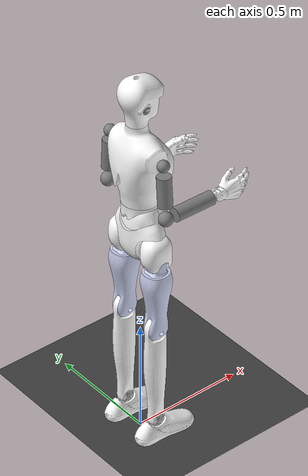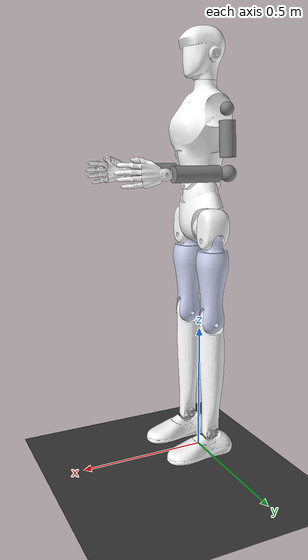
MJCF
<mujoco model="X03B">
  <compiler angle="radian" meshdir="./meshes/"/>
  <statistic meansize="0.177939" extent="1.9618" center="0.0465088 1.93584e-06 -0.21519"/>
  <asset>
    <texture type="skybox" builtin="gradient" width="128" height="128" rgb1="0.4 0.6 0.8" rgb2="0 0 0"/>
    <texture name="plane" type="2d" builtin="checker" rgb1="0.2 0.2 0.2" rgb2="0.3 0.3 0.3" width="512"
              height="512"/>
    <material name="plane" reflectance="0.0" texture="plane" texrepeat="1 1" texuniform="true"/>
    <mesh name="pelvis" file="pelvis.STL"/>
    <mesh name="left_hip_pitch_link" file="left_hip_pitch_link.STL"/>
    <mesh name="left_hip_roll_link" file="left_hip_roll_link.STL"/>
    <mesh name="left_hip_yaw_link" file="left_hip_yaw_link.STL"/>
    <mesh name="left_knee_link" file="left_knee_link.STL"/>
    <mesh name="left_ankle_pitch_link" file="left_ankle_pitch_link.STL"/>
    <mesh name="left_ankle_roll_link" file="left_ankle_roll_link.STL"/>
    <mesh name="right_hip_pitch_link" file="right_hip_pitch_link.STL"/>
    <mesh name="right_hip_roll_link" file="right_hip_roll_link.STL"/>
    <mesh name="right_hip_yaw_link" file="right_hip_yaw_link.STL"/>
    <mesh name="right_knee_link" file="right_knee_link.STL"/>
    <mesh name="right_ankle_pitch_link" file="right_ankle_pitch_link.STL"/>
    <mesh name="right_ankle_roll_link" file="right_ankle_roll_link.STL"/>
    <mesh name="waist_roll_link" file="waist_roll_link.STL"/>
    <mesh name="waist_yaw_link" file="waist_yaw_link.STL"/>
    <mesh name="torso_link" file="torso_link.STL"/>
    <mesh name="head_pitch_link" file="head_pitch_link.STL"/>
    <mesh name="head_yaw_link" file="head_yaw_link.STL"/>
    <mesh name="left_wrist_yaw_link" file="left_wrist_yaw_link.STL"/>
    <mesh name="left_wrist_pitch_link" file="left_wrist_pitch_link.STL"/>
    <mesh name="right_wrist_yaw_link" file="right_wrist_yaw_link.STL"/>
    <mesh name="right_wrist_pitch_link" file="right_wrist_pitch_link.STL"/>
  </asset>

  <worldbody>
    <geom name="floor" pos="0.001 0 0" size="100 10 .125" type="plane" material="plane" condim="3"
          conaffinity="15" friction="0.6 0.6 0.001"/>
    <light mode="trackcom" pos="0 0 5" dir="0 0 -1"/>
    <body name="pelvis" pos="0 0 0.92">
      <inertial pos="0.0019573 -1.0752e-05 0.056344" quat="1 -5.84214e-06 -0.00052877 -3.08915e-09" mass="2" diaginertia="0.018968 0.01665 0.015454"/>
      <joint name="pelvis" type="free" limited="false" actuatorfrclimited="false"/>
      <geom type="mesh" contype="0" conaffinity="0" group="1" density="0" rgba="1 1 1 1" mesh="pelvis"/>
      <geom size="0.06" pos="0 0 0.08" rgba="1 1 1 1"/>
      <body name="left_hip_pitch_link" pos="0 0.0975 0">
        <inertial pos="-0.0008943 -0.001219 0.0084596" quat="0.705285 -0.0460479 -0.034964 0.706563" mass="2" diaginertia="0.00221415 0.00182021 0.00160574"/>
        <joint name="left_hip_pitch_joint" pos="0 0 0" axis="0 1 0" range="-1.5708 0.7854"/>
        <geom type="mesh" contype="0" conaffinity="0" group="1" density="0" rgba="1 1 1 1" mesh="left_hip_pitch_link"/>
        <geom type="mesh" rgba="1 1 1 1" mesh="left_hip_pitch_link"/>
        <site name="imu" pos="0 0 0"/>
        <body name="left_hip_roll_link" pos="0 0 -0.044">
          <inertial pos="2.5752e-05 -4.528e-07 -0.0093831" quat="0.999999 -0.000152715 -0.00153048 -4.79447e-05" mass="0.3" diaginertia="0.00020398 0.00016045 0.00015153"/>
          <joint name="left_hip_roll_joint" pos="0 0 0" axis="1 0 0" range="-0.1745 1.5708"/>
          <geom type="mesh" contype="0" conaffinity="0" group="1" density="0" rgba="0.79216 0.81961 0.93333 1" mesh="left_hip_roll_link"/>
          <geom type="mesh" rgba="0.79216 0.81961 0.93333 1" mesh="left_hip_roll_link"/>
          <body name="left_hip_yaw_link" pos="0 0 -0.042">
            <inertial pos="0.00201125 0 -0.116126" quat="0.999996 -2.71485e-07 0.0029121 -9.32259e-05" mass="1.4" diaginertia="0.0100453 0.00999163 0.00202512"/>
            <joint name="left_hip_yaw_joint" pos="0 0 0" axis="0 0 -1" range="-1.5708 1.5708"/>
            <geom type="mesh" contype="0" conaffinity="0" group="1" density="0" rgba="0.79216 0.81961 0.93333 1" mesh="left_hip_yaw_link"/>
            <geom type="mesh" rgba="0.79216 0.81961 0.93333 1" mesh="left_hip_yaw_link"/>
            <body name="left_knee_link" pos="0 0 -0.284">
              <inertial pos="-0.00201967 0 -0.216004" quat="0.707106 0.00121882 0.00121882 0.707106" mass="1" diaginertia="0.0192834 0.0190851 0.000833153"/>
              <joint name="left_knee_joint" pos="0 0 0" axis="0 1 0" range="0 2.3562"/>
              <geom type="mesh" contype="0" conaffinity="0" group="1" density="0" rgba="1 1 1 1" mesh="left_knee_link"/>
              <geom type="mesh" rgba="1 1 1 1" mesh="left_knee_link"/>
              <body name="left_ankle_pitch_link" pos="0 0 -0.45">
                <inertial pos="6.9616e-09 4.5483e-09 -0.0074946" quat="0.707107 0 0 0.707107" mass="0.4" diaginertia="9.1324e-05 7.9792e-05 3.5468e-05"/>
                <joint name="left_ankle_pitch_joint" pos="0 0 0" axis="0 1 0" range="-1.0472 1.0472"/>
                <geom type="mesh" contype="0" conaffinity="0" group="1" density="0" rgba="1 1 1 1" mesh="left_ankle_pitch_link"/>
                <geom type="mesh" rgba="1 1 1 1" mesh="left_ankle_pitch_link"/>
                <body name="left_ankle_roll_link" pos="0 0 -0.058">
                  <inertial pos="0.025367 -1.8243e-07 -0.010325" quat="-1.59255e-06 0.723573 3.96319e-07 0.690248" mass="0.6" diaginertia="0.00368693 0.0034177 0.000384599"/>
                  <joint name="left_ankle_roll_joint" pos="0 0 0" axis="1 0 0" range="-0.524 0.524"/>
                  <geom type="mesh" contype="0" conaffinity="0" group="1" density="0" rgba="1 1 1 1" mesh="left_ankle_roll_link"/>
                  <geom size="0.005" pos="-0.085 0 -0.036" rgba="1 1 1 1"/>
                  <geom size="0.005" pos="-0.035 0.034 -0.036" rgba="1 1 1 1"/>
                  <geom size="0.005" pos="-0.035 -0.034 -0.036" rgba="1 1 1 1"/>
                  <geom size="0.005" pos="0.12 0.045 -0.036" rgba="1 1 1 1"/>
                  <geom size="0.005" pos="0.12 -0.045 -0.036" rgba="1 1 1 1"/>
                  <geom size="0.005" pos="0.18 0 -0.036" rgba="1 1 1 1"/>
                  <geom size="0.01 0.05" pos="0.08 -0.026 -0.024" quat="0.707105 0 0.707108 0" type="cylinder" rgba="1 1 1 1"/>
                  <geom size="0.01 0.1" pos="0.044 -0.018 -0.024" quat="0.707105 0 -0.707108 0" type="cylinder" rgba="1 1 1 1"/>
                  <geom size="0.01 0.12" pos="0.046 -0.01 -0.024" quat="0.707105 0 -0.707108 0" type="cylinder" rgba="1 1 1 1"/>
                  <geom size="0.01 0.125" pos="0.048 0 -0.024" quat="0.707105 0 -0.707108 0" type="cylinder" rgba="1 1 1 1"/>
                  <geom size="0.01 0.12" pos="0.046 0.01 -0.024" quat="0.707105 0 -0.707108 0" type="cylinder" rgba="1 1 1 1"/>
                  <geom size="0.01 0.1" pos="0.044 0.018 -0.024" quat="0.707105 0 -0.707108 0" type="cylinder" rgba="1 1 1 1"/>
                  <geom size="0.01 0.05" pos="0.08 0.026 -0.024" quat="0.707105 0 0.707108 0" type="cylinder" rgba="1 1 1 1"/>
                </body>
              </body>
            </body>
          </body>
        </body>
      </body>
      <body name="right_hip_pitch_link" pos="0 -0.0975 0">
        <inertial pos="-0.0008943 -0.001219 0.0084596" quat="0.705285 -0.0460479 -0.034964 0.706563" mass="2" diaginertia="0.00221415 0.00182021 0.00160574"/>
        <joint name="right_hip_pitch_joint" pos="0 0 0" axis="0 1 0" range="-1.5708 0.7854"/>
        <geom type="mesh" contype="0" conaffinity="0" group="1" density="0" rgba="1 1 1 1" mesh="right_hip_pitch_link"/>
        <geom type="mesh" rgba="1 1 1 1" mesh="right_hip_pitch_link"/>
        <body name="right_hip_roll_link" pos="0 0 -0.044">
          <inertial pos="2.5751e-05 -4.4797e-07 -0.0093831" quat="0.999999 -0.000150617 -0.00153038 -4.8093e-05" mass="0.3" diaginertia="0.00020398 0.00016045 0.00015153"/>
          <joint name="right_hip_roll_joint" pos="0 0 0" axis="1 0 0" range="-1.5708 0.1745"/>
          <geom type="mesh" contype="0" conaffinity="0" group="1" density="0" rgba="0.79216 0.81961 0.93333 1" mesh="right_hip_roll_link"/>
          <geom type="mesh" rgba="0.79216 0.81961 0.93333 1" mesh="right_hip_roll_link"/>
          <body name="right_hip_yaw_link" pos="0 0 -0.042">
            <inertial pos="0.00201125 0 -0.116126" quat="0.999996 -2.71485e-07 0.0029121 -9.32259e-05" mass="1.4" diaginertia="0.0100453 0.00999163 0.00202512"/>
            <joint name="right_hip_yaw_joint" pos="0 0 0" axis="0 0 1" range="-1.5708 1.5708"/>
            <geom type="mesh" contype="0" conaffinity="0" group="1" density="0" rgba="0.79216 0.81961 0.93333 1" mesh="right_hip_yaw_link"/>
            <geom type="mesh" rgba="0.79216 0.81961 0.93333 1" mesh="right_hip_yaw_link"/>
            <body name="right_knee_link" pos="0 0 -0.284">
              <inertial pos="-0.00201967 0 -0.216004" quat="0.707106 0.00121882 0.00121882 0.707106" mass="1" diaginertia="0.0192834 0.0190851 0.000833153"/>
              <joint name="right_knee_joint" pos="0 0 0" axis="0 1 0" range="0 2.3562"/>
              <geom type="mesh" contype="0" conaffinity="0" group="1" density="0" rgba="1 1 1 1" mesh="right_knee_link"/>
              <geom type="mesh" rgba="1 1 1 1" mesh="right_knee_link"/>
              <body name="right_ankle_pitch_link" pos="0 0 -0.45">
                <inertial pos="6.9616e-09 4.5483e-09 -0.0074946" quat="0.707107 0 0 0.707107" mass="0.4" diaginertia="9.1324e-05 7.9792e-05 3.5468e-05"/>
                <joint name="right_ankle_pitch_joint" pos="0 0 0" axis="0 1 0" range="-1.0472 1.0472"/>
                <geom type="mesh" contype="0" conaffinity="0" group="1" density="0" rgba="1 1 1 1" mesh="right_ankle_pitch_link"/>
                <geom type="mesh" rgba="1 1 1 1" mesh="right_ankle_pitch_link"/>
                <body name="right_ankle_roll_link" pos="0 0 -0.058">
                  <inertial pos="0.025367 -1.8287e-07 -0.010325" quat="-1.59008e-06 0.723573 3.90943e-07 0.690248" mass="0.6" diaginertia="0.00368693 0.0034177 0.000384599"/>
                  <joint name="right_ankle_roll_joint" pos="0 0 0" axis="1 0 0" range="-0.524 0.524"/>
                  <geom type="mesh" contype="0" conaffinity="0" group="1" density="0" rgba="1 1 1 1" mesh="right_ankle_roll_link"/>
                  <geom size="0.005" pos="-0.085 0 -0.036" rgba="1 1 1 1"/>
                  <geom size="0.005" pos="-0.035 0.034 -0.036" rgba="1 1 1 1"/>
                  <geom size="0.005" pos="-0.035 -0.034 -0.036" rgba="1 1 1 1"/>
                  <geom size="0.005" pos="0.12 0.045 -0.036" rgba="1 1 1 1"/>
                  <geom size="0.005" pos="0.12 -0.045 -0.036" rgba="1 1 1 1"/>
                  <geom size="0.005" pos="0.18 0 -0.036" rgba="1 1 1 1"/>
                  <geom size="0.01 0.05" pos="0.08 -0.026 -0.024" quat="0.707105 0 0.707108 0" type="cylinder" rgba="1 1 1 1"/>
                  <geom size="0.01 0.1" pos="0.044 -0.018 -0.024" quat="0.707105 0 -0.707108 0" type="cylinder" rgba="1 1 1 1"/>
                  <geom size="0.01 0.12" pos="0.046 -0.01 -0.024" quat="0.707105 0 -0.707108 0" type="cylinder" rgba="1 1 1 1"/>
                  <geom size="0.01 0.125" pos="0.048 0 -0.024" quat="0.707105 0 -0.707108 0" type="cylinder" rgba="1 1 1 1"/>
                  <geom size="0.01 0.12" pos="0.046 0.01 -0.024" quat="0.707105 0 -0.707108 0" type="cylinder" rgba="1 1 1 1"/>
                  <geom size="0.01 0.1" pos="0.044 0.018 -0.024" quat="0.707105 0 -0.707108 0" type="cylinder" rgba="1 1 1 1"/>
                  <geom size="0.01 0.05" pos="0.08 0.026 -0.024" quat="0.707105 0 0.707108 0" type="cylinder" rgba="1 1 1 1"/>
                </body>
              </body>
            </body>
          </body>
        </body>
      </body>
      <body name="waist_roll_link" pos="0 0 0.1525">
        <inertial pos="0.0020869 -9.8997e-08 0.027535" quat="-3.95653e-06 0.706536 3.96293e-06 0.707678" mass="1.5" diaginertia="0.0017744 0.0011951 0.000837528"/>
        <joint name="waist_roll_joint" pos="0 0 0" axis="-1 0 0" range="-0.3491 0.3491"/>
        <geom type="mesh" contype="0" conaffinity="0" group="1" density="0" rgba="1 1 1 1" mesh="waist_roll_link"/>
        <geom type="mesh" rgba="1 1 1 1" mesh="waist_roll_link"/>
        <body name="waist_yaw_link">
          <inertial pos="0.00198772 0.000200573 0.228119" quat="0.999969 -0.00114848 -0.00763851 -0.00148785" mass="13.5" diaginertia="0.341179 0.339681 0.0204143"/>
          <joint name="waist_yaw_joint" pos="0 0 0" axis="0 0 1" range="-1.5708 1.5708"/>
          <geom type="mesh" contype="0" conaffinity="0" group="1" density="0" rgba="1 1 1 1" mesh="waist_yaw_link"/>
          <geom type="mesh" rgba="1 1 1 1" mesh="waist_yaw_link"/>
          <geom type="mesh" contype="0" conaffinity="0" group="1" density="0" rgba="1 1 1 1" mesh="torso_link"/>
          <geom type="mesh" rgba="1 1 1 1" mesh="torso_link"/>
          <geom pos="-0.015 1.03068e-05 0.3815" quat="1 0 0 0" type="mesh" contype="0" conaffinity="0" group="1" density="0" rgba="1 1 1 1" mesh="head_pitch_link"/>
          <geom pos="-0.015 1.03068e-05 0.3815" quat="1 0 0 0" type="mesh" rgba="1 1 1 1" mesh="head_pitch_link"/>
          <geom pos="-0.015 1.03068e-05 0.3815" quat="1 0 0 0" type="mesh" contype="0" conaffinity="0" group="1" density="0" rgba="1 1 1 1" mesh="head_yaw_link"/>
          <geom pos="-0.015 1.03068e-05 0.3815" quat="1 0 0 0" type="mesh" rgba="1 1 1 1" mesh="head_yaw_link"/>
          <body name="left_shoulder_pitch_link" pos="-0.015 0.0835112 0.2865">
            <inertial pos="-2.1187e-08 0.055283 -3.2729e-10" quat="0.707105 -1.36523e-05 1.03215e-05 0.707108" mass="0.8" diaginertia="0.00060184 0.00059731 0.00056165"/>
            <joint name="left_shoulder_pitch_joint" pos="0 0 0" axis="0 1 0" range="-3.1416 1.5708"/>
            <body name="left_shoulder_roll_link" pos="0 0.0739953 0">
              <inertial pos="-0.0011333 0.00054145 -0.0024787" quat="0.936295 0.351214 0.000448155 -0.000246601" mass="0.2" diaginertia="0.000111 7.33716e-05 6.96504e-05"/>
              <joint name="left_shoulder_roll_joint" pos="0 0 0" axis="1 0 0" range="-0.1222 2.0944"/>
              <geom size="0.025"/>
              <body name="left_shoulder_yaw_link" pos="0 0.00256631 -0.0369112" quat="0.9994 0.0346494 0 0">
                <inertial pos="-0.0010112 3.4167e-05 -0.096956" quat="0.999997 -0.00194267 0.00141822 5.84669e-05" mass="1.7" diaginertia="0.00260612 0.00252503 0.000542013"/>
                <joint name="left_shoulder_yaw_joint" pos="0 0 0" axis="0 0 1" range="-0.7854 0.7854"/>
                <geom size="0.03 0.065" pos="0 0 -0.07" quat="-3.67321e-06 1 0 0" type="cylinder"/>
                <body name="left_elbow_link" pos="0 0 -0.193">
                  <inertial pos="0.00058454 3.3764e-10 0.0012698" quat="0.707026 0.0106613 0.0106626 0.707026" mass="0.6" diaginertia="8.3729e-05 5.54874e-05 5.39876e-05"/>
                  <joint name="left_elbow_joint" pos="0 0 0" axis="0 1 0" range="-0.5236 1.5708"/>
                  <geom size="0.03"/>
                  <body name="left_wrist_roll_link" pos="0.032 0 0">
                      <inertial pos="0.165655 0.000605316 0.00172587" quat="0.445809 0.547137 0.437592 0.557144" mass="1.8" diaginertia="0.0172026 0.0170529 0.000458169"/>
                      <joint name="left_wrist_roll_joint" pos="0 0 0" axis="1 0 0" range="-0.7854 0.7854"/>
                      <geom size="0.03 0.09" pos="0.1 0 0" quat="0.707388 0 0.706825 0" type="cylinder"/>
                      <geom pos="0.203 0 0" quat="1 0 0 0" type="mesh" contype="0" conaffinity="0" group="1" density="0" rgba="1 1 1 1" mesh="left_wrist_yaw_link"/>
                      <geom pos="0.203 0 0" quat="1 0 0 0" type="mesh" rgba="1 1 1 1" mesh="left_wrist_yaw_link"/>
                      <geom pos="0.2245 0 0" quat="1 0 0 0" type="mesh" contype="0" conaffinity="0" group="1" density="0" rgba="1 1 1 1" mesh="left_wrist_pitch_link"/>
                      <geom pos="0.2245 0 0" quat="1 0 0 0" type="mesh" rgba="1 1 1 1" mesh="left_wrist_pitch_link"/>
                  </body>
                </body>
              </body>
            </body>
          </body>
          <body name="right_shoulder_pitch_link" pos="-0.015 -0.0834906 0.2865">
            <inertial pos="2.1275e-08 -0.055283 -4.7153e-10" quat="0.707105 1.36364e-05 -1.03127e-05 0.707109" mass="0.8" diaginertia="0.00060184 0.00059731 0.00056165"/>
            <joint name="right_shoulder_pitch_joint" pos="0 0 0" axis="0 1 0" range="-3.1416 1.5708"/>
            <body name="right_shoulder_roll_link" pos="0 -0.0739953 0">
              <inertial pos="0.0011333 -0.00054141 -0.0024787" quat="0.936296 -0.351213 -0.000448746 -0.000246487" mass="0.2" diaginertia="0.000111 7.33715e-05 6.96505e-05"/>
              <joint name="right_shoulder_roll_joint" pos="0 0 0" axis="1 0 0" range="-2.0944 0.1222"/>
              <geom size="0.025"/>
              <body name="right_shoulder_yaw_link" pos="0 -0.00256631 -0.0369112" quat="0.9994 -0.0346494 0 0">
                <inertial pos="0.0010112 -3.4168e-05 -0.096956" quat="0.999997 0.00194267 -0.0014182 5.8446e-05" mass="1.7" diaginertia="0.00260612 0.00252503 0.000542013"/>
                <joint name="right_shoulder_yaw_joint" pos="0 0 0" axis="0 0 1" range="-0.7854 0.7854"/>
                <geom size="0.03 0.065" pos="0 0 -0.07" quat="-3.67321e-06 1 0 0" type="cylinder"/>
                <body name="right_elbow_link" pos="0 0 -0.193">
                  <inertial pos="0.00058454 5.2562e-12 -0.0012698" quat="0.707026 -0.0106626 -0.0106613 0.707026" mass="0.6" diaginertia="8.3729e-05 5.54874e-05 5.39876e-05"/>
                  <joint name="right_elbow_joint" pos="0 0 0" axis="0 1 0" range="-0.5236 1.5708"/>
                  <geom size="0.03"/>
                  <body name="right_wrist_roll_link" pos="0.032 0 0">
                      <inertial pos="0.165655 -0.000604836 0.00135602" quat="0.558544 0.436432 0.545752 0.44689" mass="1.8" diaginertia="0.0172046 0.0170565 0.000456704"/>
                      <joint name="right_wrist_roll_joint" pos="0 0 0" axis="1 0 0" range="-0.7854 0.7854"/>
                      <geom size="0.03 0.09" pos="0.1 0 0" quat="0.707388 0 0.706825 0" type="cylinder"/>
                      <geom pos="0.203 0 0" quat="1 0 0 0" type="mesh" contype="0" conaffinity="0" group="1" density="0" rgba="1 1 1 1" mesh="right_wrist_yaw_link"/>
                      <geom pos="0.203 0 0" quat="1 0 0 0" type="mesh" rgba="1 1 1 1" mesh="right_wrist_yaw_link"/>
                      <geom pos="0.2245 0 0" quat="1 0 0 0" type="mesh" contype="0" conaffinity="0" group="1" density="0" rgba="1 1 1 1" mesh="right_wrist_pitch_link"/>
                      <geom pos="0.2245 0 0" quat="1 0 0 0" type="mesh" rgba="1 1 1 1" mesh="right_wrist_pitch_link"/>
                  </body>
                </body>
              </body>
            </body>
          </body>
        </body>
      </body>
    </body>
  </worldbody>

  <actuator>
    <motor name="left_hip_yaw_joint" joint="left_hip_yaw_joint"/>
    <motor name="left_hip_roll_joint" joint="left_hip_roll_joint"/>
    <motor name="left_hip_pitch_joint" joint="left_hip_pitch_joint"/>
    <motor name="left_knee_joint" joint="left_knee_joint"/>
    <motor name="left_ankle_pitch_joint" joint="left_ankle_pitch_joint"/>
    <motor name="right_hip_yaw_joint" joint="right_hip_yaw_joint"/>
    <motor name="right_hip_roll_joint" joint="right_hip_roll_joint"/>
    <motor name="right_hip_pitch_joint" joint="right_hip_pitch_joint"/>
    <motor name="right_knee_joint" joint="right_knee_joint"/>
    <motor name="right_ankle_pitch_joint" joint="right_ankle_pitch_joint"/>
    <motor name="left_shoulder_pitch_joint" joint="left_shoulder_pitch_joint"/>
    <motor name="left_shoulder_roll_joint" joint="left_shoulder_roll_joint"/>
    <motor name="left_shoulder_yaw_joint" joint="left_shoulder_yaw_joint"/>
    <motor name="left_elbow_joint" joint="left_elbow_joint"/>
    <motor name="left_wrist_roll_joint" joint="left_wrist_roll_joint"/>
    <motor name="right_shoulder_pitch_joint" joint="right_shoulder_pitch_joint"/>
    <motor name="right_shoulder_roll_joint" joint="right_shoulder_roll_joint"/>
    <motor name="right_shoulder_yaw_joint" joint="right_shoulder_yaw_joint"/>
    <motor name="right_elbow_joint" joint="right_elbow_joint"/>
    <motor name="right_wrist_roll_joint" joint="right_wrist_roll_joint"/>
  </actuator>

  <sensor>
        <framequat name="BodyQuat" objtype="site" objname="imu"/>
  </sensor>
</mujoco>
